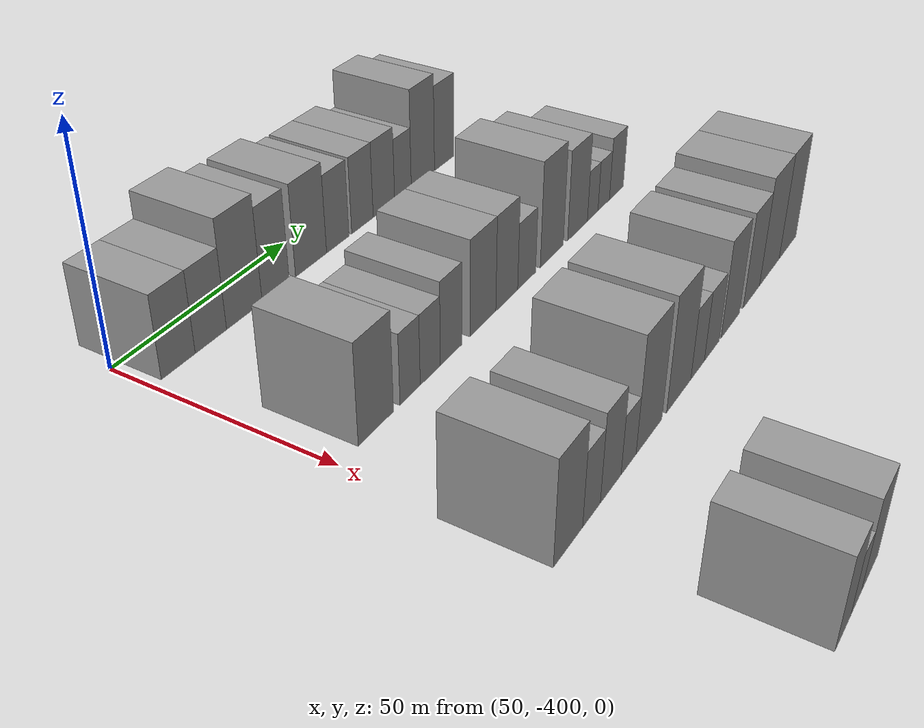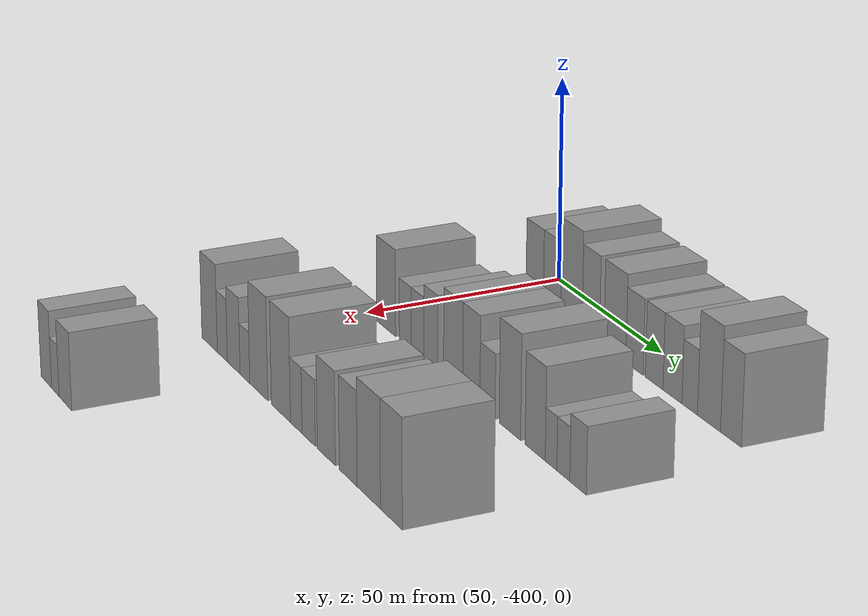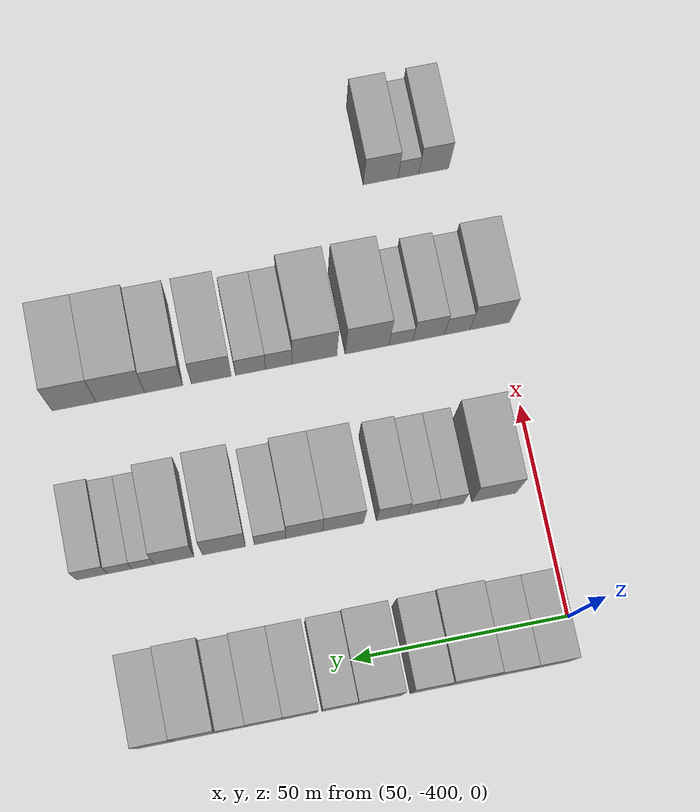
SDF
<sdf version="1.6">
 <world name="default">
  <model name="building_24">
   <static>1</static>
   <pose>50.0000 -393.2882 0 0.000000 0.000000 0.000000</pose>
   <link name="link">
    <pose>0 0 9.00 0 0 0</pose>
    <collision name="collision"><geometry><box><size>20.0000 8.9813 18.0000</size></box></geometry></collision>
    <visual name="visual">
     <cast_shadows>0</cast_shadows>
     <geometry><box><size>20.0000 8.9813 18.0000</size></box></geometry>
     <material>
      <script>
       <uri>model://grey_wall/materials/scripts</uri>
       <uri>model://grey_wall/materials/textures</uri>
       <name>vrc/grey_wall</name>
      </script>
     </material>
    </visual>
   </link>
  </model>
  <model name="building_25">
   <static>1</static>
   <pose>50.0000 -384.4250 0 0.000000 0.000000 0.000000</pose>
   <link name="link">
    <pose>0 0 9.00 0 0 0</pose>
    <collision name="collision"><geometry><box><size>20.0000 8.7452 18.0000</size></box></geometry></collision>
    <visual name="visual">
     <cast_shadows>0</cast_shadows>
     <geometry><box><size>20.0000 8.7452 18.0000</size></box></geometry>
     <material>
      <script>
       <uri>model://grey_wall/materials/scripts</uri>
       <uri>model://grey_wall/materials/textures</uri>
       <name>vrc/grey_wall</name>
      </script>
     </material>
    </visual>
   </link>
  </model>
  <model name="building_26">
   <static>1</static>
   <pose>50.0000 -374.7826 0 0.000000 0.000000 0.000000</pose>
   <link name="link">
    <pose>0 0 12.00 0 0 0</pose>
    <collision name="collision"><geometry><box><size>20.0000 10.5395 24.0000</size></box></geometry></collision>
    <visual name="visual">
     <cast_shadows>0</cast_shadows>
     <geometry><box><size>20.0000 10.5395 24.0000</size></box></geometry>
     <material>
      <script>
       <uri>model://grey_wall/materials/scripts</uri>
       <uri>model://grey_wall/materials/textures</uri>
       <name>vrc/grey_wall</name>
      </script>
     </material>
    </visual>
   </link>
  </model>
  <model name="building_27">
   <static>1</static>
   <pose>50.0000 -365.2559 0 0.000000 0.000000 0.000000</pose>
   <link name="link">
    <pose>0 0 10.50 0 0 0</pose>
    <collision name="collision"><geometry><box><size>20.0000 8.5140 21.0000</size></box></geometry></collision>
    <visual name="visual">
     <cast_shadows>0</cast_shadows>
     <geometry><box><size>20.0000 8.5140 21.0000</size></box></geometry>
     <material>
      <script>
       <uri>model://grey_wall/materials/scripts</uri>
       <uri>model://grey_wall/materials/textures</uri>
       <name>vrc/grey_wall</name>
      </script>
     </material>
    </visual>
   </link>
  </model>
  <model name="building_28">
   <static>1</static>
   <pose>50.0000 -353.7979 0 0.000000 0.000000 0.000000</pose>
   <link name="link">
    <pose>0 0 10.50 0 0 0</pose>
    <collision name="collision"><geometry><box><size>20.0000 10.4020 21.0000</size></box></geometry></collision>
    <visual name="visual">
     <cast_shadows>0</cast_shadows>
     <geometry><box><size>20.0000 10.4020 21.0000</size></box></geometry>
     <material>
      <script>
       <uri>model://grey_wall/materials/scripts</uri>
       <uri>model://grey_wall/materials/textures</uri>
       <name>vrc/grey_wall</name>
      </script>
     </material>
    </visual>
   </link>
  </model>
  <model name="building_29">
   <static>1</static>
   <pose>50.0000 -344.6565 0 0.000000 0.000000 0.000000</pose>
   <link name="link">
    <pose>0 0 9.00 0 0 0</pose>
    <collision name="collision"><geometry><box><size>20.0000 7.8808 18.0000</size></box></geometry></collision>
    <visual name="visual">
     <cast_shadows>0</cast_shadows>
     <geometry><box><size>20.0000 7.8808 18.0000</size></box></geometry>
     <material>
      <script>
       <uri>model://grey_wall/materials/scripts</uri>
       <uri>model://grey_wall/materials/textures</uri>
       <name>vrc/grey_wall</name>
      </script>
     </material>
    </visual>
   </link>
  </model>
  <model name="building_30">
   <static>1</static>
   <pose>50.0000 -335.7400 0 0.000000 0.000000 0.000000</pose>
   <link name="link">
    <pose>0 0 9.00 0 0 0</pose>
    <collision name="collision"><geometry><box><size>20.0000 7.9522 18.0000</size></box></geometry></collision>
    <visual name="visual">
     <cast_shadows>0</cast_shadows>
     <geometry><box><size>20.0000 7.9522 18.0000</size></box></geometry>
     <material>
      <script>
       <uri>model://grey_wall/materials/scripts</uri>
       <uri>model://grey_wall/materials/textures</uri>
       <name>vrc/grey_wall</name>
      </script>
     </material>
    </visual>
   </link>
  </model>
  <model name="building_31">
   <static>1</static>
   <pose>50.0000 -327.6117 0 0.000000 0.000000 0.000000</pose>
   <link name="link">
    <pose>0 0 9.00 0 0 0</pose>
    <collision name="collision"><geometry><box><size>20.0000 8.3045 18.0000</size></box></geometry></collision>
    <visual name="visual">
     <cast_shadows>0</cast_shadows>
     <geometry><box><size>20.0000 8.3045 18.0000</size></box></geometry>
     <material>
      <script>
       <uri>model://grey_wall/materials/scripts</uri>
       <uri>model://grey_wall/materials/textures</uri>
       <name>vrc/grey_wall</name>
      </script>
     </material>
    </visual>
   </link>
  </model>
  <model name="building_32">
   <static>1</static>
   <pose>50.0000 -320.1309 0 0.000000 0.000000 0.000000</pose>
   <link name="link">
    <pose>0 0 7.50 0 0 0</pose>
    <collision name="collision"><geometry><box><size>20.0000 6.6571 15.0000</size></box></geometry></collision>
    <visual name="visual">
     <cast_shadows>0</cast_shadows>
     <geometry><box><size>20.0000 6.6571 15.0000</size></box></geometry>
     <material>
      <script>
       <uri>model://grey_wall/materials/scripts</uri>
       <uri>model://grey_wall/materials/textures</uri>
       <name>vrc/grey_wall</name>
      </script>
     </material>
    </visual>
   </link>
  </model>
  <model name="building_33">
   <static>1</static>
   <pose>50.0000 -311.9429 0 0.000000 0.000000 0.000000</pose>
   <link name="link">
    <pose>0 0 12.00 0 0 0</pose>
    <collision name="collision"><geometry><box><size>20.0000 9.7190 24.0000</size></box></geometry></collision>
    <visual name="visual">
     <cast_shadows>0</cast_shadows>
     <geometry><box><size>20.0000 9.7190 24.0000</size></box></geometry>
     <material>
      <script>
       <uri>model://grey_wall/materials/scripts</uri>
       <uri>model://grey_wall/materials/textures</uri>
       <name>vrc/grey_wall</name>
      </script>
     </material>
    </visual>
   </link>
  </model>
  <model name="building_34">
   <static>1</static>
   <pose>50.0000 -302.8104 0 0.000000 0.000000 0.000000</pose>
   <link name="link">
    <pose>0 0 10.50 0 0 0</pose>
    <collision name="collision"><geometry><box><size>20.0000 8.5460 21.0000</size></box></geometry></collision>
    <visual name="visual">
     <cast_shadows>0</cast_shadows>
     <geometry><box><size>20.0000 8.5460 21.0000</size></box></geometry>
     <material>
      <script>
       <uri>model://grey_wall/materials/scripts</uri>
       <uri>model://grey_wall/materials/textures</uri>
       <name>vrc/grey_wall</name>
      </script>
     </material>
    </visual>
   </link>
  </model>
  <model name="building_163">
   <static>1</static>
   <pose>90.0000 -389.2739 0 0.000000 0.000000 0.000000</pose>
   <link name="link">
    <pose>0 0 10.50 0 0 0</pose>
    <collision name="collision"><geometry><box><size>20.0000 10.4764 21.0000</size></box></geometry></collision>
    <visual name="visual">
     <cast_shadows>0</cast_shadows>
     <geometry><box><size>20.0000 10.4764 21.0000</size></box></geometry>
     <material>
      <script>
       <uri>model://grey_wall/materials/scripts</uri>
       <uri>model://grey_wall/materials/textures</uri>
       <name>vrc/grey_wall</name>
      </script>
     </material>
    </visual>
   </link>
  </model>
  <model name="building_164">
   <static>1</static>
   <pose>90.0000 -378.8194 0 0.000000 0.000000 0.000000</pose>
   <link name="link">
    <pose>0 0 7.50 0 0 0</pose>
    <collision name="collision"><geometry><box><size>20.0000 6.4325 15.0000</size></box></geometry></collision>
    <visual name="visual">
     <cast_shadows>0</cast_shadows>
     <geometry><box><size>20.0000 6.4325 15.0000</size></box></geometry>
     <material>
      <script>
       <uri>model://grey_wall/materials/scripts</uri>
       <uri>model://grey_wall/materials/textures</uri>
       <name>vrc/grey_wall</name>
      </script>
     </material>
    </visual>
   </link>
  </model>
  <model name="building_165">
   <static>1</static>
   <pose>90.0000 -372.2567 0 0.000000 0.000000 0.000000</pose>
   <link name="link">
    <pose>0 0 7.50 0 0 0</pose>
    <collision name="collision"><geometry><box><size>20.0000 6.6930 15.0000</size></box></geometry></collision>
    <visual name="visual">
     <cast_shadows>0</cast_shadows>
     <geometry><box><size>20.0000 6.6930 15.0000</size></box></geometry>
     <material>
      <script>
       <uri>model://grey_wall/materials/scripts</uri>
       <uri>model://grey_wall/materials/textures</uri>
       <name>vrc/grey_wall</name>
      </script>
     </material>
    </visual>
   </link>
  </model>
  <model name="building_166">
   <static>1</static>
   <pose>90.0000 -365.2239 0 0.000000 0.000000 0.000000</pose>
   <link name="link">
    <pose>0 0 9.00 0 0 0</pose>
    <collision name="collision"><geometry><box><size>20.0000 7.3725 18.0000</size></box></geometry></collision>
    <visual name="visual">
     <cast_shadows>0</cast_shadows>
     <geometry><box><size>20.0000 7.3725 18.0000</size></box></geometry>
     <material>
      <script>
       <uri>model://grey_wall/materials/scripts</uri>
       <uri>model://grey_wall/materials/textures</uri>
       <name>vrc/grey_wall</name>
      </script>
     </material>
    </visual>
   </link>
  </model>
  <model name="building_167">
   <static>1</static>
   <pose>90.0000 -353.7326 0 0.000000 0.000000 0.000000</pose>
   <link name="link">
    <pose>0 0 10.50 0 0 0</pose>
    <collision name="collision"><geometry><box><size>20.0000 9.6101 21.0000</size></box></geometry></collision>
    <visual name="visual">
     <cast_shadows>0</cast_shadows>
     <geometry><box><size>20.0000 9.6101 21.0000</size></box></geometry>
     <material>
      <script>
       <uri>model://grey_wall/materials/scripts</uri>
       <uri>model://grey_wall/materials/textures</uri>
       <name>vrc/grey_wall</name>
      </script>
     </material>
    </visual>
   </link>
  </model>
  <model name="building_168">
   <static>1</static>
   <pose>90.0000 -344.6272 0 0.000000 0.000000 0.000000</pose>
   <link name="link">
    <pose>0 0 10.50 0 0 0</pose>
    <collision name="collision"><geometry><box><size>20.0000 8.6007 21.0000</size></box></geometry></collision>
    <visual name="visual">
     <cast_shadows>0</cast_shadows>
     <geometry><box><size>20.0000 8.6007 21.0000</size></box></geometry>
     <material>
      <script>
       <uri>model://grey_wall/materials/scripts</uri>
       <uri>model://grey_wall/materials/textures</uri>
       <name>vrc/grey_wall</name>
      </script>
     </material>
    </visual>
   </link>
  </model>
  <model name="building_169">
   <static>1</static>
   <pose>90.0000 -336.6328 0 0.000000 0.000000 0.000000</pose>
   <link name="link">
    <pose>0 0 7.50 0 0 0</pose>
    <collision name="collision"><geometry><box><size>20.0000 7.3882 15.0000</size></box></geometry></collision>
    <visual name="visual">
     <cast_shadows>0</cast_shadows>
     <geometry><box><size>20.0000 7.3882 15.0000</size></box></geometry>
     <material>
      <script>
       <uri>model://grey_wall/materials/scripts</uri>
       <uri>model://grey_wall/materials/textures</uri>
       <name>vrc/grey_wall</name>
      </script>
     </material>
    </visual>
   </link>
  </model>
  <model name="building_170">
   <static>1</static>
   <pose>90.0000 -325.9047 0 0.000000 0.000000 0.000000</pose>
   <link name="link">
    <pose>0 0 12.00 0 0 0</pose>
    <collision name="collision"><geometry><box><size>20.0000 10.0680 24.0000</size></box></geometry></collision>
    <visual name="visual">
     <cast_shadows>0</cast_shadows>
     <geometry><box><size>20.0000 10.0680 24.0000</size></box></geometry>
     <material>
      <script>
       <uri>model://grey_wall/materials/scripts</uri>
       <uri>model://grey_wall/materials/textures</uri>
       <name>vrc/grey_wall</name>
      </script>
     </material>
    </visual>
   </link>
  </model>
  <model name="building_171">
   <static>1</static>
   <pose>90.0000 -314.2576 0 0.000000 0.000000 0.000000</pose>
   <link name="link">
    <pose>0 0 10.50 0 0 0</pose>
    <collision name="collision"><geometry><box><size>20.0000 9.2262 21.0000</size></box></geometry></collision>
    <visual name="visual">
     <cast_shadows>0</cast_shadows>
     <geometry><box><size>20.0000 9.2262 21.0000</size></box></geometry>
     <material>
      <script>
       <uri>model://grey_wall/materials/scripts</uri>
       <uri>model://grey_wall/materials/textures</uri>
       <name>vrc/grey_wall</name>
      </script>
     </material>
    </visual>
   </link>
  </model>
  <model name="building_172">
   <static>1</static>
   <pose>90.0000 -307.0627 0 0.000000 0.000000 0.000000</pose>
   <link name="link">
    <pose>0 0 6.00 0 0 0</pose>
    <collision name="collision"><geometry><box><size>20.0000 5.1637 12.0000</size></box></geometry></collision>
    <visual name="visual">
     <cast_shadows>0</cast_shadows>
     <geometry><box><size>20.0000 5.1637 12.0000</size></box></geometry>
     <material>
      <script>
       <uri>model://grey_wall/materials/scripts</uri>
       <uri>model://grey_wall/materials/textures</uri>
       <name>vrc/grey_wall</name>
      </script>
     </material>
    </visual>
   </link>
  </model>
  <model name="building_173">
   <static>1</static>
   <pose>90.0000 -301.6283 0 0.000000 0.000000 0.000000</pose>
   <link name="link">
    <pose>0 0 6.00 0 0 0</pose>
    <collision name="collision"><geometry><box><size>20.0000 5.7050 12.0000</size></box></geometry></collision>
    <visual name="visual">
     <cast_shadows>0</cast_shadows>
     <geometry><box><size>20.0000 5.7050 12.0000</size></box></geometry>
     <material>
      <script>
       <uri>model://grey_wall/materials/scripts</uri>
       <uri>model://grey_wall/materials/textures</uri>
       <name>vrc/grey_wall</name>
      </script>
     </material>
    </visual>
   </link>
  </model>
  <model name="building_174">
   <static>1</static>
   <pose>90.0000 -295.1822 0 0.000000 0.000000 0.000000</pose>
   <link name="link">
    <pose>0 0 7.50 0 0 0</pose>
    <collision name="collision"><geometry><box><size>20.0000 7.1871 15.0000</size></box></geometry></collision>
    <visual name="visual">
     <cast_shadows>0</cast_shadows>
     <geometry><box><size>20.0000 7.1871 15.0000</size></box></geometry>
     <material>
      <script>
       <uri>model://grey_wall/materials/scripts</uri>
       <uri>model://grey_wall/materials/textures</uri>
       <name>vrc/grey_wall</name>
      </script>
     </material>
    </visual>
   </link>
  </model>
  <model name="building_298">
   <static>1</static>
   <pose>130.0000 -397.1681 0 0.000000 0.000000 0.000000</pose>
   <link name="link">
    <pose>0 0 10.50 0 0 0</pose>
    <collision name="collision"><geometry><box><size>20.0000 9.6164 21.0000</size></box></geometry></collision>
    <visual name="visual">
     <cast_shadows>0</cast_shadows>
     <geometry><box><size>20.0000 9.6164 21.0000</size></box></geometry>
     <material>
      <script>
       <uri>model://grey_wall/materials/scripts</uri>
       <uri>model://grey_wall/materials/textures</uri>
       <name>vrc/grey_wall</name>
      </script>
     </material>
    </visual>
   </link>
  </model>
  <model name="building_299">
   <static>1</static>
   <pose>130.0000 -389.2866 0 0.000000 0.000000 0.000000</pose>
   <link name="link">
    <pose>0 0 7.50 0 0 0</pose>
    <collision name="collision"><geometry><box><size>20.0000 6.1465 15.0000</size></box></geometry></collision>
    <visual name="visual">
     <cast_shadows>0</cast_shadows>
     <geometry><box><size>20.0000 6.1465 15.0000</size></box></geometry>
     <material>
      <script>
       <uri>model://grey_wall/materials/scripts</uri>
       <uri>model://grey_wall/materials/textures</uri>
       <name>vrc/grey_wall</name>
      </script>
     </material>
    </visual>
   </link>
  </model>
  <model name="building_300">
   <static>1</static>
   <pose>130.0000 -382.4162 0 0.000000 0.000000 0.000000</pose>
   <link name="link">
    <pose>0 0 9.00 0 0 0</pose>
    <collision name="collision"><geometry><box><size>20.0000 7.5943 18.0000</size></box></geometry></collision>
    <visual name="visual">
     <cast_shadows>0</cast_shadows>
     <geometry><box><size>20.0000 7.5943 18.0000</size></box></geometry>
     <material>
      <script>
       <uri>model://grey_wall/materials/scripts</uri>
       <uri>model://grey_wall/materials/textures</uri>
       <name>vrc/grey_wall</name>
      </script>
     </material>
    </visual>
   </link>
  </model>
  <model name="building_301">
   <static>1</static>
   <pose>130.0000 -375.7379 0 0.000000 0.000000 0.000000</pose>
   <link name="link">
    <pose>0 0 6.00 0 0 0</pose>
    <collision name="collision"><geometry><box><size>20.0000 5.7624 12.0000</size></box></geometry></collision>
    <visual name="visual">
     <cast_shadows>0</cast_shadows>
     <geometry><box><size>20.0000 5.7624 12.0000</size></box></geometry>
     <material>
      <script>
       <uri>model://grey_wall/materials/scripts</uri>
       <uri>model://grey_wall/materials/textures</uri>
       <name>vrc/grey_wall</name>
      </script>
     </material>
    </visual>
   </link>
  </model>
  <model name="building_302">
   <static>1</static>
   <pose>130.0000 -367.6210 0 0.000000 0.000000 0.000000</pose>
   <link name="link">
    <pose>0 0 12.00 0 0 0</pose>
    <collision name="collision"><geometry><box><size>20.0000 10.4713 24.0000</size></box></geometry></collision>
    <visual name="visual">
     <cast_shadows>0</cast_shadows>
     <geometry><box><size>20.0000 10.4713 24.0000</size></box></geometry>
     <material>
      <script>
       <uri>model://grey_wall/materials/scripts</uri>
       <uri>model://grey_wall/materials/textures</uri>
       <name>vrc/grey_wall</name>
      </script>
     </material>
    </visual>
   </link>
  </model>
  <model name="building_303">
   <static>1</static>
   <pose>130.0000 -355.0342 0 0.000000 0.000000 0.000000</pose>
   <link name="link">
    <pose>0 0 12.00 0 0 0</pose>
    <collision name="collision"><geometry><box><size>20.0000 10.7024 24.0000</size></box></geometry></collision>
    <visual name="visual">
     <cast_shadows>0</cast_shadows>
     <geometry><box><size>20.0000 10.7024 24.0000</size></box></geometry>
     <material>
      <script>
       <uri>model://grey_wall/materials/scripts</uri>
       <uri>model://grey_wall/materials/textures</uri>
       <name>vrc/grey_wall</name>
      </script>
     </material>
    </visual>
   </link>
  </model>
  <model name="building_304">
   <static>1</static>
   <pose>130.0000 -346.5163 0 0.000000 0.000000 0.000000</pose>
   <link name="link">
    <pose>0 0 7.50 0 0 0</pose>
    <collision name="collision"><geometry><box><size>20.0000 6.3333 15.0000</size></box></geometry></collision>
    <visual name="visual">
     <cast_shadows>0</cast_shadows>
     <geometry><box><size>20.0000 6.3333 15.0000</size></box></geometry>
     <material>
      <script>
       <uri>model://grey_wall/materials/scripts</uri>
       <uri>model://grey_wall/materials/textures</uri>
       <name>vrc/grey_wall</name>
      </script>
     </material>
    </visual>
   </link>
  </model>
  <model name="building_305">
   <static>1</static>
   <pose>130.0000 -339.7608 0 0.000000 0.000000 0.000000</pose>
   <link name="link">
    <pose>0 0 7.50 0 0 0</pose>
    <collision name="collision"><geometry><box><size>20.0000 7.1778 15.0000</size></box></geometry></collision>
    <visual name="visual">
     <cast_shadows>0</cast_shadows>
     <geometry><box><size>20.0000 7.1778 15.0000</size></box></geometry>
     <material>
      <script>
       <uri>model://grey_wall/materials/scripts</uri>
       <uri>model://grey_wall/materials/textures</uri>
       <name>vrc/grey_wall</name>
      </script>
     </material>
    </visual>
   </link>
  </model>
  <model name="building_306">
   <static>1</static>
   <pose>130.0000 -330.4174 0 0.000000 0.000000 0.000000</pose>
   <link name="link">
    <pose>0 0 10.50 0 0 0</pose>
    <collision name="collision"><geometry><box><size>20.0000 9.5091 21.0000</size></box></geometry></collision>
    <visual name="visual">
     <cast_shadows>0</cast_shadows>
     <geometry><box><size>20.0000 9.5091 21.0000</size></box></geometry>
     <material>
      <script>
       <uri>model://grey_wall/materials/scripts</uri>
       <uri>model://grey_wall/materials/textures</uri>
       <name>vrc/grey_wall</name>
      </script>
     </material>
    </visual>
   </link>
  </model>
  <model name="building_307">
   <static>1</static>
   <pose>130.0000 -319.1335 0 0.000000 0.000000 0.000000</pose>
   <link name="link">
    <pose>0 0 10.50 0 0 0</pose>
    <collision name="collision"><geometry><box><size>20.0000 9.0586 21.0000</size></box></geometry></collision>
    <visual name="visual">
     <cast_shadows>0</cast_shadows>
     <geometry><box><size>20.0000 9.0586 21.0000</size></box></geometry>
     <material>
      <script>
       <uri>model://grey_wall/materials/scripts</uri>
       <uri>model://grey_wall/materials/textures</uri>
       <name>vrc/grey_wall</name>
      </script>
     </material>
    </visual>
   </link>
  </model>
  <model name="building_308">
   <static>1</static>
   <pose>130.0000 -308.8516 0 0.000000 0.000000 0.000000</pose>
   <link name="link">
    <pose>0 0 12.00 0 0 0</pose>
    <collision name="collision"><geometry><box><size>20.0000 11.5054 24.0000</size></box></geometry></collision>
    <visual name="visual">
     <cast_shadows>0</cast_shadows>
     <geometry><box><size>20.0000 11.5054 24.0000</size></box></geometry>
     <material>
      <script>
       <uri>model://grey_wall/materials/scripts</uri>
       <uri>model://grey_wall/materials/textures</uri>
       <name>vrc/grey_wall</name>
      </script>
     </material>
    </visual>
   </link>
  </model>
  <model name="building_309">
   <static>1</static>
   <pose>130.0000 -297.8723 0 0.000000 0.000000 0.000000</pose>
   <link name="link">
    <pose>0 0 12.00 0 0 0</pose>
    <collision name="collision"><geometry><box><size>20.0000 10.4531 24.0000</size></box></geometry></collision>
    <visual name="visual">
     <cast_shadows>0</cast_shadows>
     <geometry><box><size>20.0000 10.4531 24.0000</size></box></geometry>
     <material>
      <script>
       <uri>model://grey_wall/materials/scripts</uri>
       <uri>model://grey_wall/materials/textures</uri>
       <name>vrc/grey_wall</name>
      </script>
     </material>
    </visual>
   </link>
  </model>
  <model name="building_436">
   <static>1</static>
   <pose>170.0000 -392.2517 0 0.000000 0.000000 0.000000</pose>
   <link name="link">
    <pose>0 0 9.00 0 0 0</pose>
    <collision name="collision"><geometry><box><size>20.0000 7.3518 18.0000</size></box></geometry></collision>
    <visual name="visual">
     <cast_shadows>0</cast_shadows>
     <geometry><box><size>20.0000 7.3518 18.0000</size></box></geometry>
     <material>
      <script>
       <uri>model://grey_wall/materials/scripts</uri>
       <uri>model://grey_wall/materials/textures</uri>
       <name>vrc/grey_wall</name>
      </script>
     </material>
    </visual>
   </link>
  </model>
  <model name="building_437">
   <static>1</static>
   <pose>170.0000 -386.0401 0 0.000000 0.000000 0.000000</pose>
   <link name="link">
    <pose>0 0 6.00 0 0 0</pose>
    <collision name="collision"><geometry><box><size>20.0000 5.0715 12.0000</size></box></geometry></collision>
    <visual name="visual">
     <cast_shadows>0</cast_shadows>
     <geometry><box><size>20.0000 5.0715 12.0000</size></box></geometry>
     <material>
      <script>
       <uri>model://grey_wall/materials/scripts</uri>
       <uri>model://grey_wall/materials/textures</uri>
       <name>vrc/grey_wall</name>
      </script>
     </material>
    </visual>
   </link>
  </model>
  <model name="building_438">
   <static>1</static>
   <pose>170.0000 -379.2460 0 0.000000 0.000000 0.000000</pose>
   <link name="link">
    <pose>0 0 9.00 0 0 0</pose>
    <collision name="collision"><geometry><box><size>20.0000 8.5168 18.0000</size></box></geometry></collision>
    <visual name="visual">
     <cast_shadows>0</cast_shadows>
     <geometry><box><size>20.0000 8.5168 18.0000</size></box></geometry>
     <material>
      <script>
       <uri>model://grey_wall/materials/scripts</uri>
       <uri>model://grey_wall/materials/textures</uri>
       <name>vrc/grey_wall</name>
      </script>
     </material>
    </visual>
   </link>
  </model>
 </world>
</sdf>
